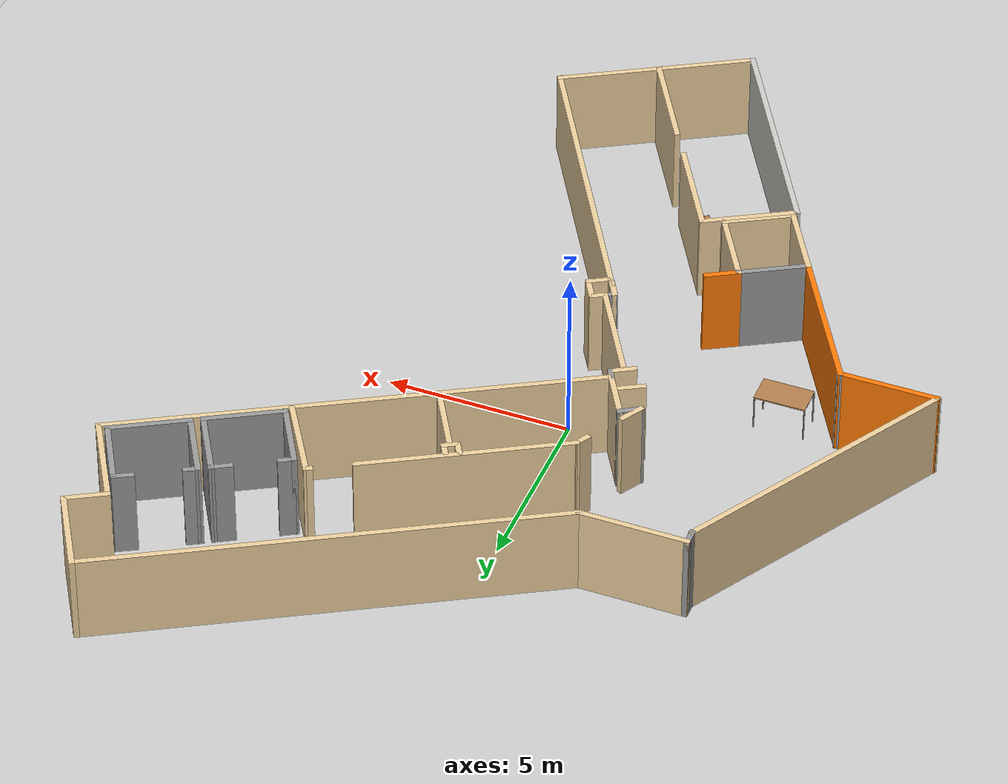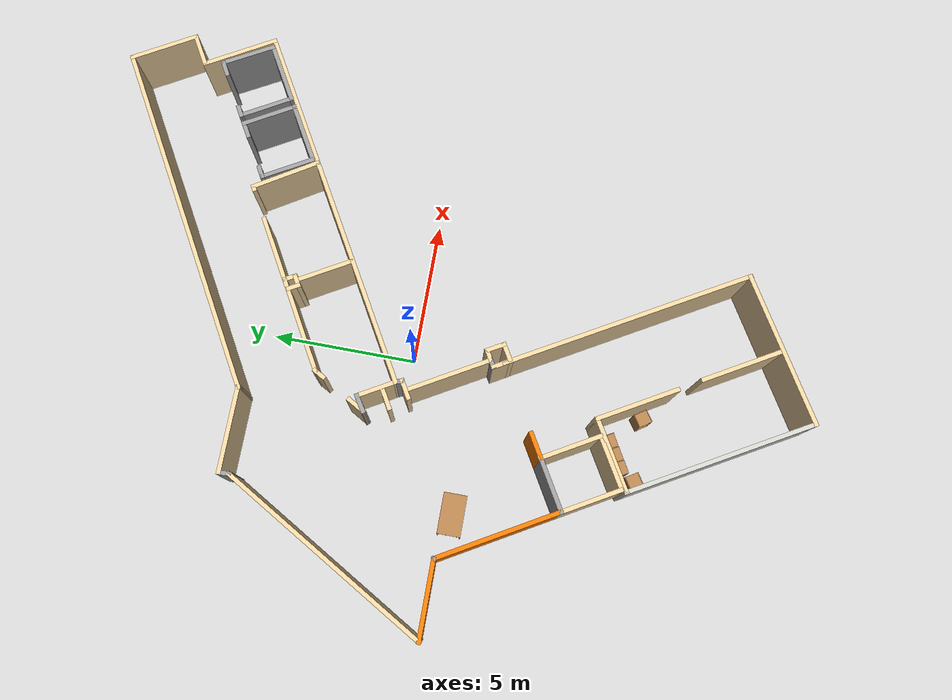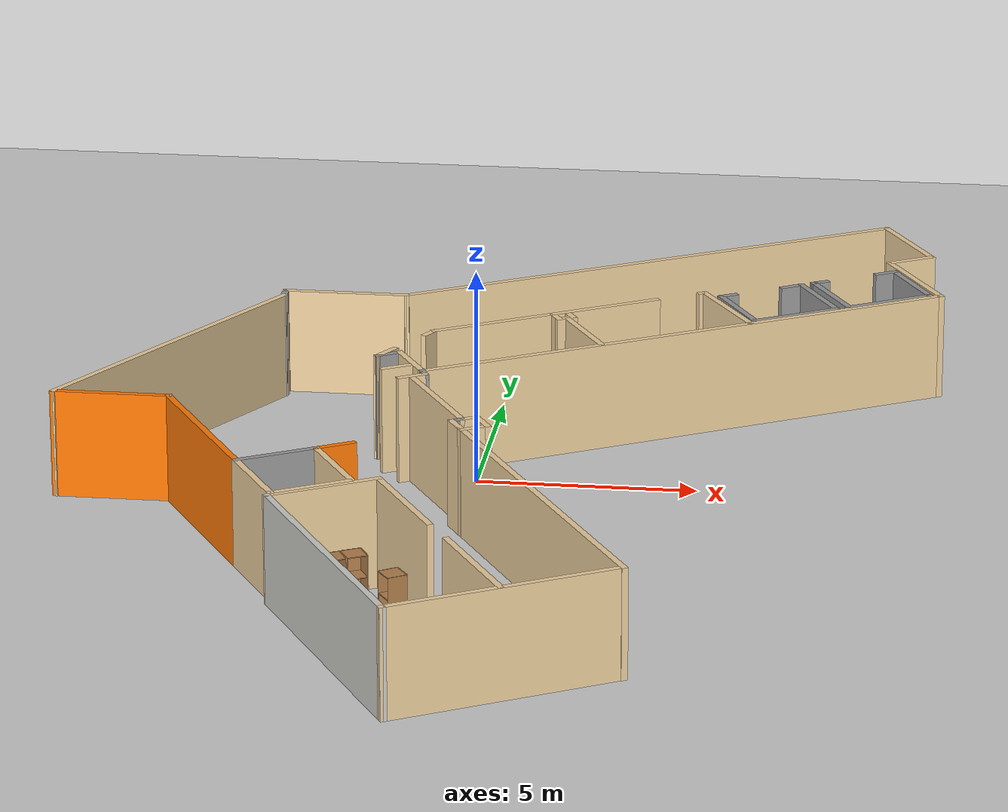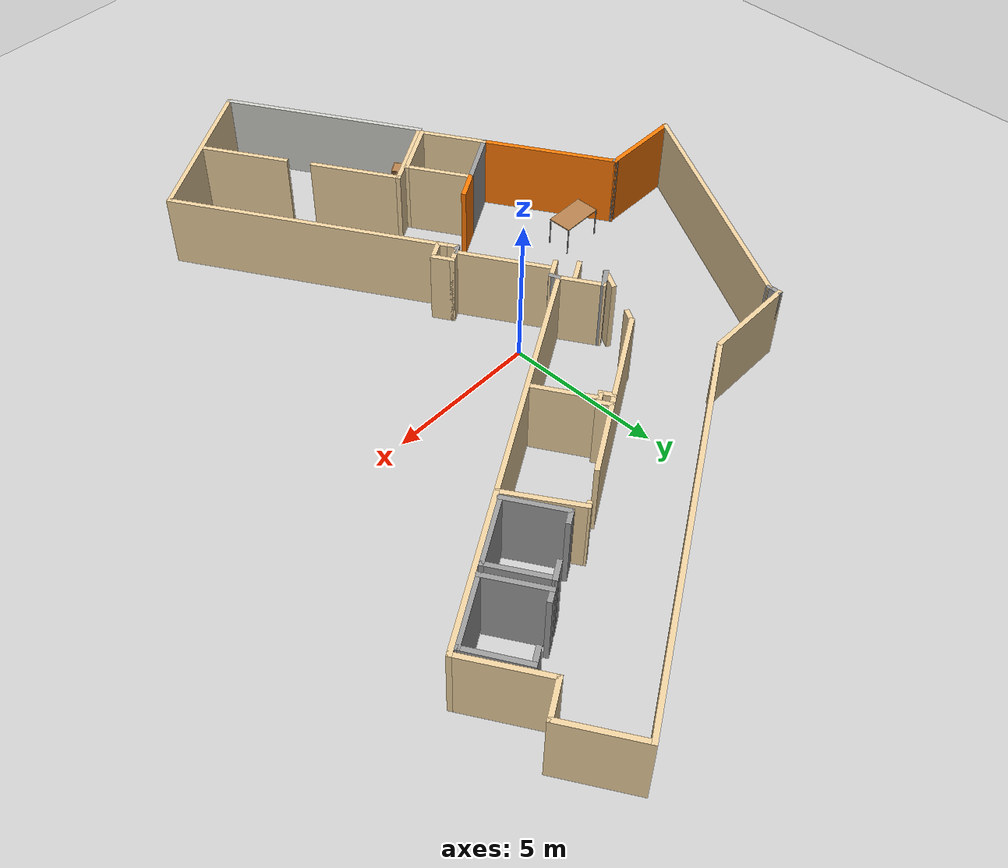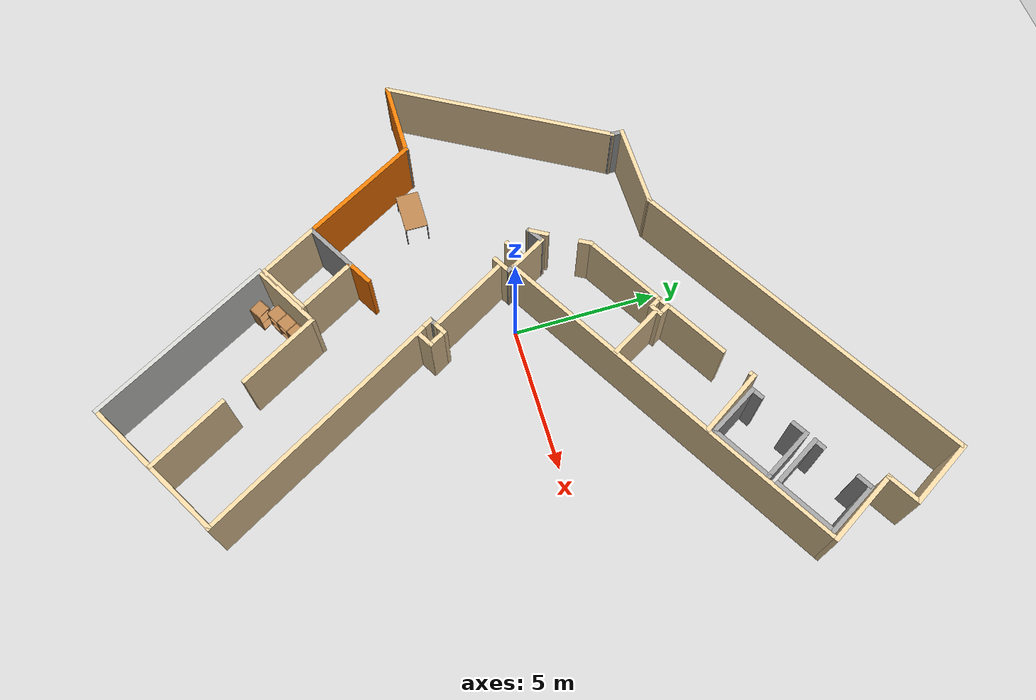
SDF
<sdf version="1.6">
 <world name="default">
  <model name="ground_plane">
   <static>1</static>
   <link name="link">
    <collision name="collision">
     <geometry><plane><normal>0 0 1</normal><size>100 100</size></plane></geometry>
     <surface><friction><ode><mu>100</mu><mu2>50</mu2></ode></friction></surface>
    </collision>
    <visual name="visual">
     <cast_shadows>0</cast_shadows>
     <geometry><plane><normal>0 0 1</normal><size>100 100</size></plane></geometry>
     <material>
      <script><uri>file://media/materials/scripts/gazebo.material</uri><name>Gazebo/Grey</name></script>
     </material>
    </visual>
   </link>
  </model>
  <model name="my_office_no_item">
   <pose>0.40615 -0.88123 0 0 -0 0</pose>
   <link name="Wall_10">
    <collision name="Wall_10_Collision">
     <geometry><box><size>6.81721 0.15 2.5</size></box></geometry>
     <pose>0 0 1.25 0 -0 0</pose>
    </collision>
    <visual name="Wall_10_Visual">
     <pose>0 0 1.25 0 -0 0</pose>
     <geometry><box><size>6.81721 0.15 2.5</size></box></geometry>
     <material>
      <script><uri>file://media/materials/scripts/gazebo.material</uri><name>Gazebo/CeilingTiled</name></script>
      <ambient>0.921569 0.807843 0.615686 1</ambient>
     </material>
    </visual>
    <pose>-2.24104 -9.70627 0 0 0 -1.05271</pose>
   </link>
   <link name="Wall_100">
    <collision name="Wall_100_Collision">
     <geometry><box><size>1.5 0.15 2.5</size></box></geometry>
     <pose>0 0 1.25 0 -0 0</pose>
    </collision>
    <visual name="Wall_100_Visual">
     <pose>0 0 1.25 0 -0 0</pose>
     <geometry><box><size>1.5 0.15 2.5</size></box></geometry>
     <material>
      <script><uri>file://media/materials/scripts/gazebo.material</uri><name>Gazebo/Grey</name></script>
      <ambient>0.921569 0.807843 0.615686 1</ambient>
     </material>
    </visual>
    <pose>-2.01529 1.80028 0 0 -0 2.0944</pose>
   </link>
   <link name="Wall_101">
    <collision name="Wall_101_Collision">
     <geometry><box><size>0.704824 0.15 2.5</size></box></geometry>
     <pose>0 0 1.25 0 -0 0</pose>
    </collision>
    <visual name="Wall_101_Visual">
     <pose>0 0 1.25 0 -0 0</pose>
     <geometry><box><size>0.704824 0.15 2.5</size></box></geometry>
     <material>
      <script><uri>file://media/materials/scripts/gazebo.material</uri><name>Gazebo/Grey</name></script>
      <ambient>1 1 1 1</ambient>
     </material>
    </visual>
    <pose>-2.58645 2.23531 0 0 0 -2.5723</pose>
   </link>
   <link name="Wall_103">
    <collision name="Wall_103_Collision">
     <geometry><box><size>0.75 0.15 2.5</size></box></geometry>
     <pose>0 0 1.25 0 -0 0</pose>
    </collision>
    <visual name="Wall_103_Visual">
     <pose>0 0 1.25 0 -0 0</pose>
     <geometry><box><size>0.75 0.15 2.5</size></box></geometry>
     <material>
      <script><uri>file://media/materials/scripts/gazebo.material</uri><name>Gazebo/Grey</name></script>
      <ambient>0.921569 0.807843 0.615686 1</ambient>
     </material>
    </visual>
    <pose>-2.30972 1.40421 0 0 -0 0.523599</pose>
   </link>
   <link name="Wall_105">
    <collision name="Wall_105_Collision">
     <geometry><box><size>0.75 0.15 2.5</size></box></geometry>
     <pose>0 0 1.25 0 -0 0</pose>
    </collision>
    <visual name="Wall_105_Visual">
     <pose>0 0 1.25 0 -0 0</pose>
     <geometry><box><size>0.75 0.15 2.5</size></box></geometry>
     <material>
      <script><uri>file://media/materials/scripts/gazebo.material</uri><name>Gazebo/Grey</name></script>
      <ambient>0.921569 0.807843 0.615686 1</ambient>
     </material>
    </visual>
    <pose>-1.85346 0.856693 0 0 -0 0.523599</pose>
   </link>
   <link name="Wall_107">
    <collision name="Wall_107_Collision">
     <geometry><box><size>0.375318 0.15 2.5</size></box></geometry>
     <pose>0 0 1.25 0 -0 0</pose>
    </collision>
    <visual name="Wall_107_Visual">
     <pose>0 0 1.25 0 -0 0</pose>
     <geometry><box><size>0.375318 0.15 2.5</size></box></geometry>
     <material>
      <script><uri>file://media/materials/scripts/gazebo.material</uri><name>Gazebo/Grey</name></script>
      <ambient>1 1 1 1</ambient>
     </material>
    </visual>
    <pose>-1.63572 1.1112 0 0 -0 1.9535</pose>
   </link>
   <link name="Wall_114">
    <collision name="Wall_114_Collision">
     <geometry><box><size>3 0.15 2.5</size></box></geometry>
     <pose>0 0 1.25 0 -0 0</pose>
    </collision>
    <visual name="Wall_114_Visual">
     <pose>0 0 1.25 0 -0 0</pose>
     <geometry><box><size>3 0.15 2.5</size></box></geometry>
     <material>
      <script><uri>file://media/materials/scripts/gazebo.material</uri><name>Gazebo/Grey</name></script>
      <ambient>0.921569 0.807843 0.615686 1</ambient>
     </material>
    </visual>
    <pose>-1.09613 -0.526424 0 0 -0 2.0944</pose>
   </link>
   <link name="Wall_118">
    <collision name="Wall_118_Collision">
     <geometry><box><size>0.5 0.15 2.5</size></box></geometry>
     <pose>0 0 1.25 0 -0 0</pose>
    </collision>
    <visual name="Wall_118_Visual">
     <pose>0 0 1.25 0 -0 0</pose>
     <geometry><box><size>0.5 0.15 2.5</size></box></geometry>
     <material>
      <script><uri>file://media/materials/scripts/gazebo.material</uri><name>Gazebo/Grey</name></script>
      <ambient>0.921569 0.807843 0.615686 1</ambient>
     </material>
    </visual>
    <pose>-0.232079 -1.67301 0 0 -0 0.523599</pose>
   </link>
   <link name="Wall_119">
    <collision name="Wall_119_Collision">
     <geometry><box><size>0.75 0.15 2.5</size></box></geometry>
     <pose>0 0 1.25 0 -0 0</pose>
    </collision>
    <visual name="Wall_119_Visual">
     <pose>0 0 1.25 0 -0 0</pose>
     <geometry><box><size>0.75 0.15 2.5</size></box></geometry>
     <material>
      <script><uri>file://media/materials/scripts/gazebo.material</uri><name>Gazebo/Grey</name></script>
      <ambient>0.921569 0.807843 0.615686 1</ambient>
     </material>
    </visual>
    <pose>0.069475 -1.84532 0 0 0 -1.0472</pose>
   </link>
   <link name="Wall_12">
    <collision name="Wall_12_Collision">
     <geometry><box><size>2.7 0.15 2.5</size></box></geometry>
     <pose>0 0 1.25 0 -0 0</pose>
    </collision>
    <visual name="Wall_12_Visual">
     <pose>0 0 1.25 0 -0 0</pose>
     <geometry><box><size>2.7 0.15 2.5</size></box></geometry>
     <material>
      <script><uri>file://media/materials/scripts/gazebo.material</uri><name>Gazebo/Grey</name></script>
      <ambient>0.921569 0.807843 0.615686 1</ambient>
     </material>
    </visual>
    <pose>-2.78771 -6.17263 0 0 -0 0.523599</pose>
   </link>
   <link name="Wall_121">
    <collision name="Wall_121_Collision">
     <geometry><box><size>0.75 0.15 2.5</size></box></geometry>
     <pose>0 0 1.25 0 -0 0</pose>
    </collision>
    <visual name="Wall_121_Visual">
     <pose>0 0 1.25 0 -0 0</pose>
     <geometry><box><size>0.75 0.15 2.5</size></box></geometry>
     <material>
      <script><uri>file://media/materials/scripts/gazebo.material</uri><name>Gazebo/Grey</name></script>
      <ambient>0.921569 0.807843 0.615686 1</ambient>
     </material>
    </visual>
    <pose>-0.040333 -2.25513 0 0 0 -2.61799</pose>
   </link>
   <link name="Wall_127">
    <collision name="Wall_127_Collision">
     <geometry><box><size>0.75 0.15 2.5</size></box></geometry>
     <pose>0 0 1.25 0 -0 0</pose>
    </collision>
    <visual name="Wall_127_Visual">
     <pose>0 0 1.25 0 -0 0</pose>
     <geometry><box><size>0.75 0.15 2.5</size></box></geometry>
     <material>
      <script><uri>file://media/materials/scripts/gazebo.material</uri><name>Gazebo/Grey</name></script>
      <ambient>0.921569 0.807843 0.615686 1</ambient>
     </material>
    </visual>
    <pose>-0.45014 -2.14532 0 0 -0 2.0944</pose>
   </link>
   <link name="Wall_128">
    <collision name="Wall_128_Collision">
     <geometry><box><size>0.4 0.15 2.5</size></box></geometry>
     <pose>0 0 1.25 0 -0 0</pose>
    </collision>
    <visual name="Wall_128_Visual">
     <pose>0 0 1.25 0 -0 0</pose>
     <geometry><box><size>0.4 0.15 2.5</size></box></geometry>
     <material>
      <script><uri>file://media/materials/scripts/gazebo.material</uri><name>Gazebo/Grey</name></script>
      <ambient>1 1 1 1</ambient>
     </material>
    </visual>
    <pose>-0.491887 -1.82301 0 0 -0 0.523599</pose>
   </link>
   <link name="Wall_130">
    <collision name="Wall_130_Collision">
     <geometry><box><size>2 0.15 2.5</size></box></geometry>
     <pose>0 0 1.25 0 -0 0</pose>
    </collision>
    <visual name="Wall_130_Visual">
     <pose>0 0 1.25 0 -0 0</pose>
     <geometry><box><size>2 0.15 2.5</size></box></geometry>
     <material>
      <script><uri>file://media/materials/scripts/gazebo.material</uri><name>Gazebo/Grey</name></script>
      <ambient>0.921569 0.807843 0.615686 1</ambient>
     </material>
    </visual>
    <pose>1.6661 4.2808 0 0 -0 2.0944</pose>
   </link>
   <link name="Wall_132">
    <collision name="Wall_132_Collision">
     <geometry><box><size>0.5 0.15 2.5</size></box></geometry>
     <pose>0 0 1.25 0 -0 0</pose>
    </collision>
    <visual name="Wall_132_Visual">
     <pose>0 0 1.25 0 -0 0</pose>
     <geometry><box><size>0.5 0.15 2.5</size></box></geometry>
     <material>
      <script><uri>file://media/materials/scripts/gazebo.material</uri><name>Gazebo/Grey</name></script>
      <ambient>0.921569 0.807843 0.615686 1</ambient>
     </material>
    </visual>
    <pose>0.900947 5.21621 0 0 0 -1.0472</pose>
   </link>
   <link name="Wall_133">
    <collision name="Wall_133_Collision">
     <geometry><box><size>0.5 0.15 2.5</size></box></geometry>
     <pose>0 0 1.25 0 -0 0</pose>
    </collision>
    <visual name="Wall_133_Visual">
     <pose>0 0 1.25 0 -0 0</pose>
     <geometry><box><size>0.5 0.15 2.5</size></box></geometry>
     <material>
      <script><uri>file://media/materials/scripts/gazebo.material</uri><name>Gazebo/Grey</name></script>
      <ambient>0.921569 0.807843 0.615686 1</ambient>
     </material>
    </visual>
    <pose>1.14 5.15215 0 0 -0 0.523599</pose>
   </link>
   <link name="Wall_134">
    <collision name="Wall_134_Collision">
     <geometry><box><size>0.5 0.15 2.5</size></box></geometry>
     <pose>0 0 1.25 0 -0 0</pose>
    </collision>
    <visual name="Wall_134_Visual">
     <pose>0 0 1.25 0 -0 0</pose>
     <geometry><box><size>0.5 0.15 2.5</size></box></geometry>
     <material>
      <script><uri>file://media/materials/scripts/gazebo.material</uri><name>Gazebo/Grey</name></script>
      <ambient>0.921569 0.807843 0.615686 1</ambient>
     </material>
    </visual>
    <pose>1.20406 5.39121 0 0 -0 2.0944</pose>
   </link>
   <link name="Wall_138">
    <collision name="Wall_138_Collision">
     <geometry><box><size>0.5 0.15 2.5</size></box></geometry>
     <pose>0 0 1.25 0 -0 0</pose>
    </collision>
    <visual name="Wall_138_Visual">
     <pose>0 0 1.25 0 -0 0</pose>
     <geometry><box><size>0.5 0.15 2.5</size></box></geometry>
     <material>
      <script><uri>file://media/materials/scripts/gazebo.material</uri><name>Gazebo/Grey</name></script>
      <ambient>0.921569 0.807843 0.615686 1</ambient>
     </material>
    </visual>
    <pose>-1.85761 3.75287 0 0 0 -2.0944</pose>
   </link>
   <link name="Wall_140">
    <collision name="Wall_140_Collision">
     <geometry><box><size>0.75 0.15 2.5</size></box></geometry>
     <pose>0 0 1.25 0 -0 0</pose>
    </collision>
    <visual name="Wall_140_Visual">
     <pose>0 0 1.25 0 -0 0</pose>
     <geometry><box><size>0.75 0.15 2.5</size></box></geometry>
     <material>
      <script><uri>file://media/materials/scripts/gazebo.material</uri><name>Gazebo/Grey</name></script>
      <ambient>0.921569 0.807843 0.615686 1</ambient>
     </material>
    </visual>
    <pose>-2.67011 2.34558 0 0 -0 1.0472</pose>
   </link>
   <link name="Wall_142">
    <collision name="Wall_142_Collision">
     <geometry><box><size>5.75 0.15 2.5</size></box></geometry>
     <pose>0 0 1.25 0 -0 0</pose>
    </collision>
    <visual name="Wall_142_Visual">
     <pose>0 0 1.25 0 -0 0</pose>
     <geometry><box><size>5.75 0.15 2.5</size></box></geometry>
     <material>
      <script><uri>file://media/materials/scripts/gazebo.material</uri><name>Gazebo/Grey</name></script>
      <ambient>0.921569 0.807843 0.615686 1</ambient>
     </material>
    </visual>
    <pose>0.654765 5.30443 0 0 -0 0.523599</pose>
   </link>
   <link name="Wall_144">
    <collision name="Wall_144_Collision">
     <geometry><box><size>0.25 0.15 2.5</size></box></geometry>
     <pose>0 0 1.25 0 -0 0</pose>
    </collision>
    <visual name="Wall_144_Visual">
     <pose>0 0 1.25 0 -0 0</pose>
     <geometry><box><size>0.25 0.15 2.5</size></box></geometry>
     <material>
      <script><uri>file://media/materials/scripts/gazebo.material</uri><name>Gazebo/Grey</name></script>
      <ambient>0.921569 0.807843 0.615686 1</ambient>
     </material>
    </visual>
    <pose>4.11887 7.30443 0 0 0 -2.61799</pose>
   </link>
   <link name="Wall_146">
    <collision name="Wall_146_Collision">
     <geometry><box><size>1 0.15 2.5</size></box></geometry>
     <pose>0 0 1.25 0 -0 0</pose>
    </collision>
    <visual name="Wall_146_Visual">
     <pose>0 0 1.25 0 -0 0</pose>
     <geometry><box><size>1 0.15 2.5</size></box></geometry>
     <material>
      <script><uri>file://media/materials/scripts/gazebo.material</uri><name>Gazebo/Grey</name></script>
      <ambient>0.996078 0.47451 0.0196078 1</ambient>
     </material>
    </visual>
    <pose>-2.92194 -3.69198 0 0 -0 0.523599</pose>
   </link>
   <link name="Wall_148">
    <collision name="Wall_148_Collision">
     <geometry><box><size>3 0.15 2.5</size></box></geometry>
     <pose>0 0 1.25 0 -0 0</pose>
    </collision>
    <visual name="Wall_148_Visual">
     <pose>0 0 1.25 0 -0 0</pose>
     <geometry><box><size>3 0.15 2.5</size></box></geometry>
     <material>
      <script><uri>file://media/materials/scripts/gazebo.material</uri><name>Gazebo/Grey</name></script>
      <ambient>0.921569 0.807843 0.615686 1</ambient>
     </material>
    </visual>
    <pose>-0.971033 -6.76922 0 0 0 -1.0472</pose>
   </link>
   <link name="Wall_151">
    <collision name="Wall_151_Collision">
     <geometry><box><size>3 0.15 2.5</size></box></geometry>
     <pose>0 0 1.25 0 -0 0</pose>
    </collision>
    <visual name="Wall_151_Visual">
     <pose>0 0 1.25 0 -0 0</pose>
     <geometry><box><size>3 0.15 2.5</size></box></geometry>
     <material>
      <script><uri>file://media/materials/scripts/gazebo.material</uri><name>Gazebo/Grey</name></script>
      <ambient>0.921569 0.807843 0.615686 1</ambient>
     </material>
    </visual>
    <pose>0.936909 -10.0288 0 0 0 -1.0472</pose>
   </link>
   <link name="Wall_20">
    <collision name="Wall_20_Collision">
     <geometry><box><size>2 0.15 2.5</size></box></geometry>
     <pose>0 0 1.25 0 -0 0</pose>
    </collision>
    <visual name="Wall_20_Visual">
     <pose>0 0 1.25 0 -0 0</pose>
     <geometry><box><size>2 0.15 2.5</size></box></geometry>
     <material>
      <script><uri>file://media/materials/scripts/gazebo.material</uri><name>Gazebo/Grey</name></script>
      <ambient>0.921569 0.807843 0.615686 1</ambient>
     </material>
    </visual>
    <pose>-3.04107 -6.18563 0 0 -0 0.523599</pose>
   </link>
   <link name="Wall_23">
    <collision name="Wall_23_Collision">
     <geometry><box><size>2.25 0.15 2.5</size></box></geometry>
     <pose>0 0 1.25 0 -0 0</pose>
    </collision>
    <visual name="Wall_23_Visual">
     <pose>0 0 1.25 0 -0 0</pose>
     <geometry><box><size>2.25 0.15 2.5</size></box></geometry>
     <material>
      <script><uri>file://media/materials/scripts/gazebo.material</uri><name>Gazebo/Grey</name></script>
      <ambient>0.921569 0.807843 0.615686 1</ambient>
     </material>
    </visual>
    <pose>-4.36715 -5.73881 0 0 -0 2.0944</pose>
   </link>
   <link name="Wall_24">
    <collision name="Wall_24_Collision">
     <geometry><box><size>2 0.15 2.5</size></box></geometry>
     <pose>0 0 1.25 0 -0 0</pose>
    </collision>
    <visual name="Wall_24_Visual">
     <pose>0 0 1.25 0 -0 0</pose>
     <geometry><box><size>2 0.15 2.5</size></box></geometry>
     <material>
      <script><uri>file://media/materials/scripts/gazebo.material</uri><name>Gazebo/Grey</name></script>
      <ambient>1 1 1 1</ambient>
     </material>
    </visual>
    <pose>-4.09107 -4.36698 0 0 -0 0.523599</pose>
   </link>
   <link name="Wall_25">
    <collision name="Wall_25_Collision">
     <geometry><box><size>2.25 0.15 2.5</size></box></geometry>
     <pose>0 0 1.25 0 -0 0</pose>
    </collision>
    <visual name="Wall_25_Visual">
     <pose>0 0 1.25 0 -0 0</pose>
     <geometry><box><size>2.25 0.15 2.5</size></box></geometry>
     <material>
      <script><uri>file://media/materials/scripts/gazebo.material</uri><name>Gazebo/Grey</name></script>
      <ambient>0.921569 0.807843 0.615686 1</ambient>
     </material>
    </visual>
    <pose>-2.765 -4.81381 0 0 0 -1.0472</pose>
   </link>
   <link name="Wall_28">
    <collision name="Wall_28_Collision">
     <geometry><box><size>9.03253 0.15 2.5</size></box></geometry>
     <pose>0 0 1.25 0 -0 0</pose>
    </collision>
    <visual name="Wall_28_Visual">
     <pose>0 0 1.25 0 -0 0</pose>
     <geometry><box><size>9.03253 0.15 2.5</size></box></geometry>
     <material>
      <script><uri>file://media/materials/scripts/gazebo.material</uri><name>Gazebo/Grey</name></script>
      <ambient>0.921569 0.807843 0.615686 1</ambient>
     </material>
    </visual>
    <pose>1.81712 -6.06844 0 0 0 -1.04842</pose>
   </link>
   <link name="Wall_30">
    <collision name="Wall_30_Collision">
     <geometry><box><size>4.5 0.15 2.5</size></box></geometry>
     <pose>0 0 1.25 0 -0 0</pose>
    </collision>
    <visual name="Wall_30_Visual">
     <pose>0 0 1.25 0 -0 0</pose>
     <geometry><box><size>4.5 0.15 2.5</size></box></geometry>
     <material>
      <script><uri>file://media/materials/scripts/gazebo.material</uri><name>Gazebo/Grey</name></script>
      <ambient>0.996078 0.47451 0.0196078 1</ambient>
     </material>
    </visual>
    <pose>-5.97965 -2.94587 0 0 -0 2.0944</pose>
   </link>
   <link name="Wall_31">
    <collision name="Wall_31_Collision">
     <geometry><box><size>0.15 0.15 2.5</size></box></geometry>
     <pose>0 0 1.25 0 -0 0</pose>
    </collision>
    <visual name="Wall_31_Visual">
     <pose>0 0 1.25 0 -0 0</pose>
     <geometry><box><size>0.15 0.15 2.5</size></box></geometry>
     <material>
      <script><uri>file://media/materials/scripts/gazebo.material</uri><name>Gazebo/Grey</name></script>
      <ambient>1 1 1 1</ambient>
     </material>
    </visual>
    <pose>-7.06715 -1.06227 0 0 -0 0</pose>
   </link>
   <link name="Wall_34">
    <collision name="Wall_34_Collision">
     <geometry><box><size>2.75 0.15 2.5</size></box></geometry>
     <pose>0 0 1.25 0 -0 0</pose>
    </collision>
    <visual name="Wall_34_Visual">
     <pose>0 0 1.25 0 -0 0</pose>
     <geometry><box><size>2.75 0.15 2.5</size></box></geometry>
     <material>
      <script><uri>file://media/materials/scripts/gazebo.material</uri><name>Gazebo/Grey</name></script>
      <ambient>0.996078 0.47451 0.0196078 1</ambient>
     </material>
    </visual>
    <pose>-8.36715 -1.06227 0 0 -0 3.14159</pose>
   </link>
   <link name="Wall_35">
    <collision name="Wall_35_Collision">
     <geometry><box><size>8.25 0.15 2.5</size></box></geometry>
     <pose>0 0 1.25 0 -0 0</pose>
    </collision>
    <visual name="Wall_35_Visual">
     <pose>0 0 1.25 0 -0 0</pose>
     <geometry><box><size>8.25 0.15 2.5</size></box></geometry>
     <material>
      <script><uri>file://media/materials/scripts/gazebo.material</uri><name>Gazebo/Grey</name></script>
      <ambient>0.921569 0.807843 0.615686 1</ambient>
     </material>
    </visual>
    <pose>-7.64215 2.44513 0 0 -0 1.0472</pose>
   </link>
   <link name="Wall_37">
    <collision name="Wall_37_Collision">
     <geometry><box><size>0.5 0.15 2.5</size></box></geometry>
     <pose>0 0 1.25 0 -0 0</pose>
    </collision>
    <visual name="Wall_37_Visual">
     <pose>0 0 1.25 0 -0 0</pose>
     <geometry><box><size>0.5 0.15 2.5</size></box></geometry>
     <material>
      <script><uri>file://media/materials/scripts/gazebo.material</uri><name>Gazebo/Grey</name></script>
      <ambient>1 1 1 1</ambient>
     </material>
    </visual>
    <pose>-5.61715 6.12754 0 0 -0 1.5708</pose>
   </link>
   <link name="Wall_38">
    <collision name="Wall_38_Collision">
     <geometry><box><size>3 0.15 2.5</size></box></geometry>
     <pose>0 0 1.25 0 -0 0</pose>
    </collision>
    <visual name="Wall_38_Visual">
     <pose>0 0 1.25 0 -0 0</pose>
     <geometry><box><size>3 0.15 2.5</size></box></geometry>
     <material>
      <script><uri>file://media/materials/scripts/gazebo.material</uri><name>Gazebo/Grey</name></script>
      <ambient>0.921569 0.807843 0.615686 1</ambient>
     </material>
    </visual>
    <pose>-4.19215 6.30254 0 0 -0 0</pose>
   </link>
   <link name="Wall_39">
    <collision name="Wall_39_Collision">
     <geometry><box><size>12.75 0.15 2.5</size></box></geometry>
     <pose>0 0 1.25 0 -0 0</pose>
    </collision>
    <visual name="Wall_39_Visual">
     <pose>0 0 1.25 0 -0 0</pose>
     <geometry><box><size>12.75 0.15 2.5</size></box></geometry>
     <material>
      <script><uri>file://media/materials/scripts/gazebo.material</uri><name>Gazebo/Grey</name></script>
      <ambient>0.921569 0.807843 0.615686 1</ambient>
     </material>
    </visual>
    <pose>2.68881 9.45254 0 0 -0 0.523599</pose>
   </link>
   <link name="Wall_41">
    <collision name="Wall_41_Collision">
     <geometry><box><size>2.5 0.15 2.5</size></box></geometry>
     <pose>0 0 1.25 0 -0 0</pose>
    </collision>
    <visual name="Wall_41_Visual">
     <pose>0 0 1.25 0 -0 0</pose>
     <geometry><box><size>2.5 0.15 2.5</size></box></geometry>
     <material>
      <script><uri>file://media/materials/scripts/gazebo.material</uri><name>Gazebo/Grey</name></script>
      <ambient>0.921569 0.807843 0.615686 1</ambient>
     </material>
    </visual>
    <pose>8.73227 11.585 0 0 0 -1.0472</pose>
   </link>
   <link name="Wall_42">
    <collision name="Wall_42_Collision">
     <geometry><box><size>1.25 0.15 2.5</size></box></geometry>
     <pose>0 0 1.25 0 -0 0</pose>
    </collision>
    <visual name="Wall_42_Visual">
     <pose>0 0 1.25 0 -0 0</pose>
     <geometry><box><size>1.25 0.15 2.5</size></box></geometry>
     <material>
      <script><uri>file://media/materials/scripts/gazebo.material</uri><name>Gazebo/Grey</name></script>
      <ambient>0.921569 0.807843 0.615686 1</ambient>
     </material>
    </visual>
    <pose>8.84346 10.2924 0 0 0 -2.61799</pose>
   </link>
   <link name="Wall_46">
    <collision name="Wall_46_Collision">
     <geometry><box><size>1.98692 0.15 2.5</size></box></geometry>
     <pose>0 0 1.25 0 -0 0</pose>
    </collision>
    <visual name="Wall_46_Visual">
     <pose>0 0 1.25 0 -0 0</pose>
     <geometry><box><size>1.98692 0.15 2.5</size></box></geometry>
     <material>
      <script><uri>file://media/materials/scripts/gazebo.material</uri><name>Gazebo/Grey</name></script>
      <ambient>1 1 1 1</ambient>
     </material>
    </visual>
    <pose>8.96637 8.57534 0 0 0 -1.05967</pose>
   </link>
   <link name="Wall_47">
    <collision name="Wall_47_Collision">
     <geometry><box><size>2.25 0.15 2.5</size></box></geometry>
     <pose>0 0 1.25 0 -0 0</pose>
    </collision>
    <visual name="Wall_47_Visual">
     <pose>0 0 1.25 0 -0 0</pose>
     <geometry><box><size>2.25 0.15 2.5</size></box></geometry>
     <material>
      <script><uri>file://media/materials/scripts/gazebo.material</uri><name>Gazebo/Grey</name></script>
      <ambient>1 1 1 1</ambient>
     </material>
    </visual>
    <pose>8.50632 7.24926 0 0 0 -2.61799</pose>
   </link>
   <link name="Wall_48">
    <collision name="Wall_48_Collision">
     <geometry><box><size>2 0.15 2.5</size></box></geometry>
     <pose>0 0 1.25 0 -0 0</pose>
    </collision>
    <visual name="Wall_48_Visual">
     <pose>0 0 1.25 0 -0 0</pose>
     <geometry><box><size>2 0.15 2.5</size></box></geometry>
     <material>
      <script><uri>file://media/materials/scripts/gazebo.material</uri><name>Gazebo/Grey</name></script>
      <ambient>1 1 1 1</ambient>
     </material>
    </visual>
    <pose>7.13449 7.52534 0 0 -0 2.0944</pose>
   </link>
   <link name="Wall_50">
    <collision name="Wall_50_Collision">
     <geometry><box><size>0.462497 0.15 2.5</size></box></geometry>
     <pose>0 0 1.25 0 -0 0</pose>
    </collision>
    <visual name="Wall_50_Visual">
     <pose>0 0 1.25 0 -0 0</pose>
     <geometry><box><size>0.462497 0.15 2.5</size></box></geometry>
     <material>
      <script><uri>file://media/materials/scripts/gazebo.material</uri><name>Gazebo/Grey</name></script>
      <ambient>1 1 1 1</ambient>
     </material>
    </visual>
    <pose>6.80843 8.40257 0 0 -0 0.509127</pose>
   </link>
   <link name="Wall_52">
    <collision name="Wall_52_Collision">
     <geometry><box><size>0.6 0.15 2.5</size></box></geometry>
     <pose>0 0 1.25 0 -0 0</pose>
    </collision>
    <visual name="Wall_52_Visual">
     <pose>0 0 1.25 0 -0 0</pose>
     <geometry><box><size>0.6 0.15 2.5</size></box></geometry>
     <material>
      <script><uri>file://media/materials/scripts/gazebo.material</uri><name>Gazebo/Grey</name></script>
      <ambient>1 1 1 1</ambient>
     </material>
    </visual>
    <pose>8.30902 9.26391 0 0 0 -2.61799</pose>
   </link>
   <link name="Wall_63">
    <collision name="Wall_63_Collision">
     <geometry><box><size>2 0.15 2.5</size></box></geometry>
     <pose>0 0 1.25 0 -0 0</pose>
    </collision>
    <visual name="Wall_63_Visual">
     <pose>0 0 1.25 0 -0 0</pose>
     <geometry><box><size>2 0.15 2.5</size></box></geometry>
     <material>
      <script><uri>file://media/materials/scripts/gazebo.material</uri><name>Gazebo/Grey</name></script>
      <ambient>1 1 1 1</ambient>
     </material>
    </visual>
    <pose>6.84954 7.3586 0 0 0 -1.0472</pose>
   </link>
   <link name="Wall_64">
    <collision name="Wall_64_Collision">
     <geometry><box><size>2.25 0.15 2.5</size></box></geometry>
     <pose>0 0 1.25 0 -0 0</pose>
    </collision>
    <visual name="Wall_64_Visual">
     <pose>0 0 1.25 0 -0 0</pose>
     <geometry><box><size>2.25 0.15 2.5</size></box></geometry>
     <material>
      <script><uri>file://media/materials/scripts/gazebo.material</uri><name>Gazebo/Grey</name></script>
      <ambient>1 1 1 1</ambient>
     </material>
    </visual>
    <pose>6.40272 6.03253 0 0 0 -2.61799</pose>
   </link>
   <link name="Wall_65">
    <collision name="Wall_65_Collision">
     <geometry><box><size>2 0.15 2.5</size></box></geometry>
     <pose>0 0 1.25 0 -0 0</pose>
    </collision>
    <visual name="Wall_65_Visual">
     <pose>0 0 1.25 0 -0 0</pose>
     <geometry><box><size>2 0.15 2.5</size></box></geometry>
     <material>
      <script><uri>file://media/materials/scripts/gazebo.material</uri><name>Gazebo/Grey</name></script>
      <ambient>1 1 1 1</ambient>
     </material>
    </visual>
    <pose>5.04089 6.3086 0 0 -0 2.0944</pose>
   </link>
   <link name="Wall_68">
    <collision name="Wall_68_Collision">
     <geometry><box><size>0.5 0.15 2.5</size></box></geometry>
     <pose>0 0 1.25 0 -0 0</pose>
    </collision>
    <visual name="Wall_68_Visual">
     <pose>0 0 1.25 0 -0 0</pose>
     <geometry><box><size>0.5 0.15 2.5</size></box></geometry>
     <material>
      <script><uri>file://media/materials/scripts/gazebo.material</uri><name>Gazebo/Grey</name></script>
      <ambient>1 1 1 1</ambient>
     </material>
    </visual>
    <pose>4.72994 7.19717 0 0 -0 0.523599</pose>
   </link>
   <link name="Wall_7">
    <collision name="Wall_7_Collision">
     <geometry><box><size>5.49275 0.15 2.5</size></box></geometry>
     <pose>0 0 1.25 0 -0 0</pose>
    </collision>
    <visual name="Wall_7_Visual">
     <pose>0 0 1.25 0 -0 0</pose>
     <geometry><box><size>5.49275 0.15 2.5</size></box></geometry>
     <material>
      <script><uri>file://media/materials/scripts/gazebo.material</uri><name>Gazebo/Grey</name></script>
      <ambient>0.921569 0.807843 0.615686 1</ambient>
     </material>
    </visual>
    <pose>1.71643 -11.2549 0 0 -0 0.528712</pose>
   </link>
   <link name="Wall_72">
    <collision name="Wall_72_Collision">
     <geometry><box><size>0.637557 0.15 2.5</size></box></geometry>
     <pose>0 0 1.25 0 -0 0</pose>
    </collision>
    <visual name="Wall_72_Visual">
     <pose>0 0 1.25 0 -0 0</pose>
     <geometry><box><size>0.637557 0.15 2.5</size></box></geometry>
     <material>
      <script><uri>file://media/materials/scripts/gazebo.material</uri><name>Gazebo/Grey</name></script>
      <ambient>1 1 1 1</ambient>
     </material>
    </visual>
    <pose>6.17707 8.03583 0 0 0 -2.60872</pose>
   </link>
   <link name="Wall_78">
    <collision name="Wall_78_Collision">
     <geometry><box><size>2.75 0.15 2.5</size></box></geometry>
     <pose>0 0 1.25 0 -0 0</pose>
    </collision>
    <visual name="Wall_78_Visual">
     <pose>0 0 1.25 0 -0 0</pose>
     <geometry><box><size>2.75 0.15 2.5</size></box></geometry>
     <material>
      <script><uri>file://media/materials/scripts/gazebo.material</uri><name>Gazebo/Grey</name></script>
      <ambient>0.921569 0.807843 0.615686 1</ambient>
     </material>
    </visual>
    <pose>9.01714 8.89154 0 0 0 -1.0472</pose>
   </link>
   <link name="Wall_80">
    <collision name="Wall_80_Collision">
     <geometry><box><size>13.25 0.15 2.5</size></box></geometry>
     <pose>0 0 1.25 0 -0 0</pose>
    </collision>
    <visual name="Wall_80_Visual">
     <pose>0 0 1.25 0 -0 0</pose>
     <geometry><box><size>13.25 0.15 2.5</size></box></geometry>
     <material>
      <script><uri>file://media/materials/scripts/gazebo.material</uri><name>Gazebo/Grey</name></script>
      <ambient>0.921569 0.807843 0.615686 1</ambient>
     </material>
    </visual>
    <pose>3.99468 4.49071 0 0 0 -2.61799</pose>
   </link>
   <link name="Wall_88">
    <collision name="Wall_88_Collision">
     <geometry><box><size>2.48828 0.15 2.5</size></box></geometry>
     <pose>0 0 1.25 0 -0 0</pose>
    </collision>
    <visual name="Wall_88_Visual">
     <pose>0 0 1.25 0 -0 0</pose>
     <geometry><box><size>2.48828 0.15 2.5</size></box></geometry>
     <material>
      <script><uri>file://media/materials/scripts/gazebo.material</uri><name>Gazebo/Grey</name></script>
      <ambient>0.921569 0.807843 0.615686 1</ambient>
     </material>
    </visual>
    <pose>4.77873 6.33608 0 0 0 -1.0153</pose>
   </link>
   <static>1</static>
  </model>
  <model name="cabinet_clone_5">
   <static>1</static>
   <link name="cabinet_bottom_plate">
    <inertial>
     <pose>0 0 -1 0 -0 0</pose>
     <inertia><ixx>2.05</ixx><ixy>0</ixy><ixz>0</ixz><iyy>2.05</iyy><iyz>0</iyz><izz>2.05</izz></inertia>
     <mass>25</mass>
    </inertial>
    <collision name="cabinet_bottom_plate_geom">
     <pose>0 0 0.01 0 -0 0</pose>
     <geometry><box><size>0.45 0.45 0.02</size></box></geometry>
    </collision>
    <visual name="cabinet_bottom_plate_geom_visual">
     <pose>0 0 0.01 0 -0 0</pose>
     <geometry><box><size>0.45 0.45 0.02</size></box></geometry>
     <material>
      <script><uri>file://media/materials/scripts/gazebo.material</uri><name>Gazebo/Wood</name></script>
     </material>
    </visual>
    <collision name="cabinet_bottom_plate_geom_cabinet_back_plate">
     <pose>0.235 0 0.51 0 -0 0</pose>
     <geometry><box><size>0.02 0.45 1.02</size></box></geometry>
    </collision>
    <visual name="cabinet_bottom_plate_geom_cabinet_back_plate_visual">
     <pose>0.235 0 0.51 0 -0 0</pose>
     <geometry><box><size>0.02 0.45 1.02</size></box></geometry>
     <material>
      <script><uri>file://media/materials/scripts/gazebo.material</uri><name>Gazebo/Wood</name></script>
     </material>
    </visual>
    <collision name="cabinet_bottom_plate_geom_cabinet_left_plate">
     <pose>0 0.235 0.51 0 -0 0</pose>
     <geometry><box><size>0.45 0.02 1.02</size></box></geometry>
    </collision>
    <visual name="cabinet_bottom_plate_geom_cabinet_left_plate_visual">
     <pose>0 0.235 0.51 0 -0 0</pose>
     <geometry><box><size>0.45 0.02 1.02</size></box></geometry>
     <material>
      <script><uri>file://media/materials/scripts/gazebo.material</uri><name>Gazebo/Wood</name></script>
     </material>
    </visual>
    <collision name="cabinet_bottom_plate_geom_cabinet_middle_plate">
     <pose>0 0 0.51 0 -0 0</pose>
     <geometry><box><size>0.45 0.45 0.02</size></box></geometry>
    </collision>
    <visual name="cabinet_bottom_plate_geom_cabinet_middle_plate_visual">
     <pose>0 0 0.51 0 -0 0</pose>
     <geometry><box><size>0.45 0.45 0.02</size></box></geometry>
     <material>
      <script><uri>file://media/materials/scripts/gazebo.material</uri><name>Gazebo/Wood</name></script>
     </material>
    </visual>
    <collision name="cabinet_bottom_plate_geom_cabinet_right_plate">
     <pose>0 -0.235 0.51 0 -0 0</pose>
     <geometry><box><size>0.45 0.02 1.02</size></box></geometry>
    </collision>
    <visual name="cabinet_bottom_plate_geom_cabinet_right_plate_visual">
     <pose>0 -0.235 0.51 0 -0 0</pose>
     <geometry><box><size>0.45 0.02 1.02</size></box></geometry>
     <material>
      <script><uri>file://media/materials/scripts/gazebo.material</uri><name>Gazebo/Wood</name></script>
     </material>
    </visual>
    <collision name="cabinet_bottom_plate_geom_cabinet_top_plate">
     <pose>0 0 1.01 0 -0 0</pose>
     <geometry><box><size>0.45 0.45 0.02</size></box></geometry>
    </collision>
    <visual name="cabinet_bottom_plate_geom_cabinet_top_plate_visual">
     <pose>0 0 1.01 0 -0 0</pose>
     <geometry><box><size>0.45 0.45 0.02</size></box></geometry>
     <material>
      <script><uri>file://media/materials/scripts/gazebo.material</uri><name>Gazebo/Wood</name></script>
     </material>
    </visual>
   </link>
   <pose>-2.89854 -8.09884 0 0 0 -2.58006</pose>
  </model>
  <model name="cabinet_clone_10_clone_1">
   <static>1</static>
   <link name="cabinet_bottom_plate">
    <inertial>
     <pose>0 0 -1 0 -0 0</pose>
     <inertia><ixx>2.05</ixx><ixy>0</ixy><ixz>0</ixz><iyy>2.05</iyy><iyz>0</iyz><izz>2.05</izz></inertia>
     <mass>25</mass>
    </inertial>
    <collision name="cabinet_bottom_plate_geom">
     <pose>0 0 0.01 0 -0 0</pose>
     <geometry><box><size>0.45 0.45 0.02</size></box></geometry>
    </collision>
    <visual name="cabinet_bottom_plate_geom_visual">
     <pose>0 0 0.01 0 -0 0</pose>
     <geometry><box><size>0.45 0.45 0.02</size></box></geometry>
     <material>
      <script><uri>file://media/materials/scripts/gazebo.material</uri><name>Gazebo/Wood</name></script>
     </material>
    </visual>
    <collision name="cabinet_bottom_plate_geom_cabinet_back_plate">
     <pose>0.235 0 0.51 0 -0 0</pose>
     <geometry><box><size>0.02 0.45 1.02</size></box></geometry>
    </collision>
    <visual name="cabinet_bottom_plate_geom_cabinet_back_plate_visual">
     <pose>0.235 0 0.51 0 -0 0</pose>
     <geometry><box><size>0.02 0.45 1.02</size></box></geometry>
     <material>
      <script><uri>file://media/materials/scripts/gazebo.material</uri><name>Gazebo/Wood</name></script>
     </material>
    </visual>
    <collision name="cabinet_bottom_plate_geom_cabinet_left_plate">
     <pose>0 0.235 0.51 0 -0 0</pose>
     <geometry><box><size>0.45 0.02 1.02</size></box></geometry>
    </collision>
    <visual name="cabinet_bottom_plate_geom_cabinet_left_plate_visual">
     <pose>0 0.235 0.51 0 -0 0</pose>
     <geometry><box><size>0.45 0.02 1.02</size></box></geometry>
     <material>
      <script><uri>file://media/materials/scripts/gazebo.material</uri><name>Gazebo/Wood</name></script>
     </material>
    </visual>
    <collision name="cabinet_bottom_plate_geom_cabinet_middle_plate">
     <pose>0 0 0.51 0 -0 0</pose>
     <geometry><box><size>0.45 0.45 0.02</size></box></geometry>
    </collision>
    <visual name="cabinet_bottom_plate_geom_cabinet_middle_plate_visual">
     <pose>0 0 0.51 0 -0 0</pose>
     <geometry><box><size>0.45 0.45 0.02</size></box></geometry>
     <material>
      <script><uri>file://media/materials/scripts/gazebo.material</uri><name>Gazebo/Wood</name></script>
     </material>
    </visual>
    <collision name="cabinet_bottom_plate_geom_cabinet_right_plate">
     <pose>0 -0.235 0.51 0 -0 0</pose>
     <geometry><box><size>0.45 0.02 1.02</size></box></geometry>
    </collision>
    <visual name="cabinet_bottom_plate_geom_cabinet_right_plate_visual">
     <pose>0 -0.235 0.51 0 -0 0</pose>
     <geometry><box><size>0.45 0.02 1.02</size></box></geometry>
     <material>
      <script><uri>file://media/materials/scripts/gazebo.material</uri><name>Gazebo/Wood</name></script>
     </material>
    </visual>
    <collision name="cabinet_bottom_plate_geom_cabinet_top_plate">
     <pose>0 0 1.01 0 -0 0</pose>
     <geometry><box><size>0.45 0.45 0.02</size></box></geometry>
    </collision>
    <visual name="cabinet_bottom_plate_geom_cabinet_top_plate_visual">
     <pose>0 0 1.01 0 -0 0</pose>
     <geometry><box><size>0.45 0.45 0.02</size></box></geometry>
     <material>
      <script><uri>file://media/materials/scripts/gazebo.material</uri><name>Gazebo/Wood</name></script>
     </material>
    </visual>
   </link>
   <pose>-2.56629 -7.57519 0 0 -0 2.05876</pose>
  </model>
  <model name="cabinet_clone_10_clone_1_clone">
   <static>1</static>
   <link name="cabinet_bottom_plate">
    <inertial>
     <pose>0 0 -1 0 -0 0</pose>
     <inertia><ixx>2.05</ixx><ixy>0</ixy><ixz>0</ixz><iyy>2.05</iyy><iyz>0</iyz><izz>2.05</izz></inertia>
     <mass>25</mass>
    </inertial>
    <collision name="cabinet_bottom_plate_geom">
     <pose>0 0 0.01 0 -0 0</pose>
     <geometry><box><size>0.45 0.45 0.02</size></box></geometry>
    </collision>
    <visual name="cabinet_bottom_plate_geom_visual">
     <pose>0 0 0.01 0 -0 0</pose>
     <geometry><box><size>0.45 0.45 0.02</size></box></geometry>
     <material>
      <script><uri>file://media/materials/scripts/gazebo.material</uri><name>Gazebo/Wood</name></script>
     </material>
    </visual>
    <collision name="cabinet_bottom_plate_geom_cabinet_back_plate">
     <pose>0.235 0 0.51 0 -0 0</pose>
     <geometry><box><size>0.02 0.45 1.02</size></box></geometry>
    </collision>
    <visual name="cabinet_bottom_plate_geom_cabinet_back_plate_visual">
     <pose>0.235 0 0.51 0 -0 0</pose>
     <geometry><box><size>0.02 0.45 1.02</size></box></geometry>
     <material>
      <script><uri>file://media/materials/scripts/gazebo.material</uri><name>Gazebo/Wood</name></script>
     </material>
    </visual>
    <collision name="cabinet_bottom_plate_geom_cabinet_left_plate">
     <pose>0 0.235 0.51 0 -0 0</pose>
     <geometry><box><size>0.45 0.02 1.02</size></box></geometry>
    </collision>
    <visual name="cabinet_bottom_plate_geom_cabinet_left_plate_visual">
     <pose>0 0.235 0.51 0 -0 0</pose>
     <geometry><box><size>0.45 0.02 1.02</size></box></geometry>
     <material>
      <script><uri>file://media/materials/scripts/gazebo.material</uri><name>Gazebo/Wood</name></script>
     </material>
    </visual>
    <collision name="cabinet_bottom_plate_geom_cabinet_middle_plate">
     <pose>0 0 0.51 0 -0 0</pose>
     <geometry><box><size>0.45 0.45 0.02</size></box></geometry>
    </collision>
    <visual name="cabinet_bottom_plate_geom_cabinet_middle_plate_visual">
     <pose>0 0 0.51 0 -0 0</pose>
     <geometry><box><size>0.45 0.45 0.02</size></box></geometry>
     <material>
      <script><uri>file://media/materials/scripts/gazebo.material</uri><name>Gazebo/Wood</name></script>
     </material>
    </visual>
    <collision name="cabinet_bottom_plate_geom_cabinet_right_plate">
     <pose>0 -0.235 0.51 0 -0 0</pose>
     <geometry><box><size>0.45 0.02 1.02</size></box></geometry>
    </collision>
    <visual name="cabinet_bottom_plate_geom_cabinet_right_plate_visual">
     <pose>0 -0.235 0.51 0 -0 0</pose>
     <geometry><box><size>0.45 0.02 1.02</size></box></geometry>
     <material>
      <script><uri>file://media/materials/scripts/gazebo.material</uri><name>Gazebo/Wood</name></script>
     </material>
    </visual>
    <collision name="cabinet_bottom_plate_geom_cabinet_top_plate">
     <pose>0 0 1.01 0 -0 0</pose>
     <geometry><box><size>0.45 0.45 0.02</size></box></geometry>
    </collision>
    <visual name="cabinet_bottom_plate_geom_cabinet_top_plate_visual">
     <pose>0 0 1.01 0 -0 0</pose>
     <geometry><box><size>0.45 0.45 0.02</size></box></geometry>
     <material>
      <script><uri>file://media/materials/scripts/gazebo.material</uri><name>Gazebo/Wood</name></script>
     </material>
    </visual>
   </link>
   <pose>-2.14736 -7.33739 0 0 -0 2.05876</pose>
  </model>
  <model name="cabinet_clone_10_clone_1_clone_0">
   <static>1</static>
   <link name="cabinet_bottom_plate">
    <inertial>
     <pose>0 0 -1 0 -0 0</pose>
     <inertia><ixx>2.05</ixx><ixy>0</ixy><ixz>0</ixz><iyy>2.05</iyy><iyz>0</iyz><izz>2.05</izz></inertia>
     <mass>25</mass>
    </inertial>
    <collision name="cabinet_bottom_plate_geom">
     <pose>0 0 0.01 0 -0 0</pose>
     <geometry><box><size>0.45 0.45 0.02</size></box></geometry>
    </collision>
    <visual name="cabinet_bottom_plate_geom_visual">
     <pose>0 0 0.01 0 -0 0</pose>
     <geometry><box><size>0.45 0.45 0.02</size></box></geometry>
     <material>
      <script><uri>file://media/materials/scripts/gazebo.material</uri><name>Gazebo/Wood</name></script>
     </material>
    </visual>
    <collision name="cabinet_bottom_plate_geom_cabinet_back_plate">
     <pose>0.235 0 0.51 0 -0 0</pose>
     <geometry><box><size>0.02 0.45 1.02</size></box></geometry>
    </collision>
    <visual name="cabinet_bottom_plate_geom_cabinet_back_plate_visual">
     <pose>0.235 0 0.51 0 -0 0</pose>
     <geometry><box><size>0.02 0.45 1.02</size></box></geometry>
     <material>
      <script><uri>file://media/materials/scripts/gazebo.material</uri><name>Gazebo/Wood</name></script>
     </material>
    </visual>
    <collision name="cabinet_bottom_plate_geom_cabinet_left_plate">
     <pose>0 0.235 0.51 0 -0 0</pose>
     <geometry><box><size>0.45 0.02 1.02</size></box></geometry>
    </collision>
    <visual name="cabinet_bottom_plate_geom_cabinet_left_plate_visual">
     <pose>0 0.235 0.51 0 -0 0</pose>
     <geometry><box><size>0.45 0.02 1.02</size></box></geometry>
     <material>
      <script><uri>file://media/materials/scripts/gazebo.material</uri><name>Gazebo/Wood</name></script>
     </material>
    </visual>
    <collision name="cabinet_bottom_plate_geom_cabinet_middle_plate">
     <pose>0 0 0.51 0 -0 0</pose>
     <geometry><box><size>0.45 0.45 0.02</size></box></geometry>
    </collision>
    <visual name="cabinet_bottom_plate_geom_cabinet_middle_plate_visual">
     <pose>0 0 0.51 0 -0 0</pose>
     <geometry><box><size>0.45 0.45 0.02</size></box></geometry>
     <material>
      <script><uri>file://media/materials/scripts/gazebo.material</uri><name>Gazebo/Wood</name></script>
     </material>
    </visual>
    <collision name="cabinet_bottom_plate_geom_cabinet_right_plate">
     <pose>0 -0.235 0.51 0 -0 0</pose>
     <geometry><box><size>0.45 0.02 1.02</size></box></geometry>
    </collision>
    <visual name="cabinet_bottom_plate_geom_cabinet_right_plate_visual">
     <pose>0 -0.235 0.51 0 -0 0</pose>
     <geometry><box><size>0.45 0.02 1.02</size></box></geometry>
     <material>
      <script><uri>file://media/materials/scripts/gazebo.material</uri><name>Gazebo/Wood</name></script>
     </material>
    </visual>
    <collision name="cabinet_bottom_plate_geom_cabinet_top_plate">
     <pose>0 0 1.01 0 -0 0</pose>
     <geometry><box><size>0.45 0.45 0.02</size></box></geometry>
    </collision>
    <visual name="cabinet_bottom_plate_geom_cabinet_top_plate_visual">
     <pose>0 0 1.01 0 -0 0</pose>
     <geometry><box><size>0.45 0.45 0.02</size></box></geometry>
     <material>
      <script><uri>file://media/materials/scripts/gazebo.material</uri><name>Gazebo/Wood</name></script>
     </material>
    </visual>
   </link>
   <pose>-1.72122 -7.09763 0 0 -0 2.05876</pose>
  </model>
  <model name="table">
   <static>0</static>
   <link name="link">
    <collision name="surface">
     <pose>0 0 1 0 -0 0</pose>
     <geometry><box><size>1.5 0.8 0.03</size></box></geometry>
     <surface><friction><ode><mu>0.6</mu><mu2>0.6</mu2></ode></friction></surface>
    </collision>
    <visual name="visual1">
     <pose>0 0 1 0 -0 0</pose>
     <geometry><box><size>1.4 0.8 0.04</size></box></geometry>
     <material>
      <script><uri>file://media/materials/scripts/gazebo.material</uri><name>Gazebo/Wood</name></script>
     </material>
    </visual>
    <collision name="front_left_leg">
     <pose>0.68 0.38 0.5 0 -0 0</pose>
     <geometry><cylinder><radius>0.02</radius><length>1</length></cylinder></geometry>
    </collision>
    <visual name="front_left_leg">
     <pose>0.68 0.38 0.5 0 -0 0</pose>
     <geometry><cylinder><radius>0.02</radius><length>1</length></cylinder></geometry>
     <material>
      <script><uri>file://media/materials/scripts/gazebo.material</uri><name>Gazebo/Grey</name></script>
     </material>
    </visual>
    <collision name="front_right_leg">
     <pose>0.68 -0.38 0.5 0 -0 0</pose>
     <geometry><cylinder><radius>0.02</radius><length>1</length></cylinder></geometry>
    </collision>
    <visual name="front_right_leg">
     <pose>0.68 -0.38 0.5 0 -0 0</pose>
     <geometry><cylinder><radius>0.02</radius><length>1</length></cylinder></geometry>
     <material>
      <script><uri>file://media/materials/scripts/gazebo.material</uri><name>Gazebo/Grey</name></script>
     </material>
    </visual>
    <collision name="back_right_leg">
     <pose>-0.68 -0.38 0.5 0 -0 0</pose>
     <geometry><cylinder><radius>0.02</radius><length>1</length></cylinder></geometry>
    </collision>
    <visual name="back_right_leg">
     <pose>-0.68 -0.38 0.5 0 -0 0</pose>
     <geometry><cylinder><radius>0.02</radius><length>1</length></cylinder></geometry>
     <material>
      <script><uri>file://media/materials/scripts/gazebo.material</uri><name>Gazebo/Grey</name></script>
     </material>
    </visual>
    <collision name="back_left_leg">
     <pose>-0.68 0.38 0.5 0 -0 0</pose>
     <geometry><cylinder><radius>0.02</radius><length>1</length></cylinder></geometry>
    </collision>
    <visual name="back_left_leg">
     <pose>-0.68 0.38 0.5 0 -0 0</pose>
     <geometry><cylinder><radius>0.02</radius><length>1</length></cylinder></geometry>
     <material>
      <script><uri>file://media/materials/scripts/gazebo.material</uri><name>Gazebo/Grey</name></script>
     </material>
    </visual>
    <inertial>
     <inertia><ixx>1</ixx><ixy>0</ixy><ixz>0</ixz><iyy>1</iyy><iyz>0</iyz><izz>1</izz></inertia>
     <mass>1</mass>
    </inertial>
   </link>
   <pose>-5.09126 -2.26664 -1e-06 1e-06 -0 0</pose>
  </model>
  <model name="cabinet_clone_10_clone_1_clone_0_clone_clone">
   <static>1</static>
   <link name="cabinet_bottom_plate">
    <inertial>
     <pose>0 0 -1 0 -0 0</pose>
     <inertia><ixx>2.05</ixx><ixy>0</ixy><ixz>0</ixz><iyy>2.05</iyy><iyz>0</iyz><izz>2.05</izz></inertia>
     <mass>25</mass>
    </inertial>
    <collision name="cabinet_bottom_plate_geom">
     <pose>0 0 0.01 0 -0 0</pose>
     <geometry><box><size>0.45 0.45 0.02</size></box></geometry>
    </collision>
    <visual name="cabinet_bottom_plate_geom_visual">
     <pose>0 0 0.01 0 -0 0</pose>
     <geometry><box><size>0.45 0.45 0.02</size></box></geometry>
     <material>
      <script><uri>file://media/materials/scripts/gazebo.material</uri><name>Gazebo/Wood</name></script>
     </material>
    </visual>
    <collision name="cabinet_bottom_plate_geom_cabinet_back_plate">
     <pose>0.235 0 0.51 0 -0 0</pose>
     <geometry><box><size>0.02 0.45 1.02</size></box></geometry>
    </collision>
    <visual name="cabinet_bottom_plate_geom_cabinet_back_plate_visual">
     <pose>0.235 0 0.51 0 -0 0</pose>
     <geometry><box><size>0.02 0.45 1.02</size></box></geometry>
     <material>
      <script><uri>file://media/materials/scripts/gazebo.material</uri><name>Gazebo/Wood</name></script>
     </material>
    </visual>
    <collision name="cabinet_bottom_plate_geom_cabinet_left_plate">
     <pose>0 0.235 0.51 0 -0 0</pose>
     <geometry><box><size>0.45 0.02 1.02</size></box></geometry>
    </collision>
    <visual name="cabinet_bottom_plate_geom_cabinet_left_plate_visual">
     <pose>0 0.235 0.51 0 -0 0</pose>
     <geometry><box><size>0.45 0.02 1.02</size></box></geometry>
     <material>
      <script><uri>file://media/materials/scripts/gazebo.material</uri><name>Gazebo/Wood</name></script>
     </material>
    </visual>
    <collision name="cabinet_bottom_plate_geom_cabinet_middle_plate">
     <pose>0 0 0.51 0 -0 0</pose>
     <geometry><box><size>0.45 0.45 0.02</size></box></geometry>
    </collision>
    <visual name="cabinet_bottom_plate_geom_cabinet_middle_plate_visual">
     <pose>0 0 0.51 0 -0 0</pose>
     <geometry><box><size>0.45 0.45 0.02</size></box></geometry>
     <material>
      <script><uri>file://media/materials/scripts/gazebo.material</uri><name>Gazebo/Wood</name></script>
     </material>
    </visual>
    <collision name="cabinet_bottom_plate_geom_cabinet_right_plate">
     <pose>0 -0.235 0.51 0 -0 0</pose>
     <geometry><box><size>0.45 0.02 1.02</size></box></geometry>
    </collision>
    <visual name="cabinet_bottom_plate_geom_cabinet_right_plate_visual">
     <pose>0 -0.235 0.51 0 -0 0</pose>
     <geometry><box><size>0.45 0.02 1.02</size></box></geometry>
     <material>
      <script><uri>file://media/materials/scripts/gazebo.material</uri><name>Gazebo/Wood</name></script>
     </material>
    </visual>
    <collision name="cabinet_bottom_plate_geom_cabinet_top_plate">
     <pose>0 0 1.01 0 -0 0</pose>
     <geometry><box><size>0.45 0.45 0.02</size></box></geometry>
    </collision>
    <visual name="cabinet_bottom_plate_geom_cabinet_top_plate_visual">
     <pose>0 0 1.01 0 -0 0</pose>
     <geometry><box><size>0.45 0.45 0.02</size></box></geometry>
     <material>
      <script><uri>file://media/materials/scripts/gazebo.material</uri><name>Gazebo/Wood</name></script>
     </material>
    </visual>
   </link>
   <pose>-0.747168 -8.10079 0 0 -0 0.595664</pose>
  </model>
 </world>
</sdf>
